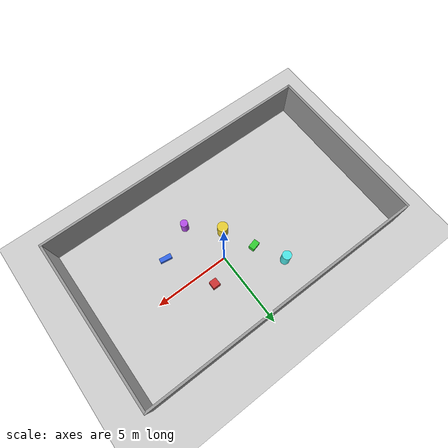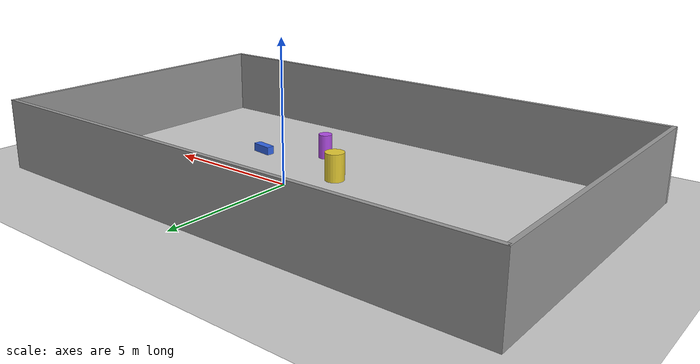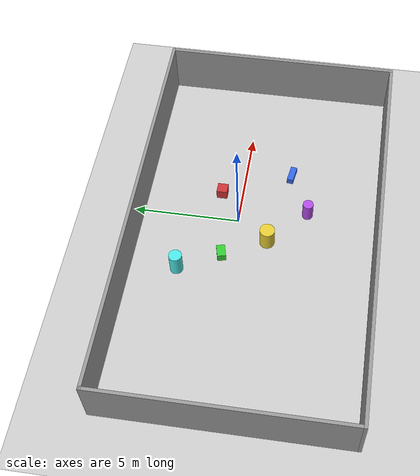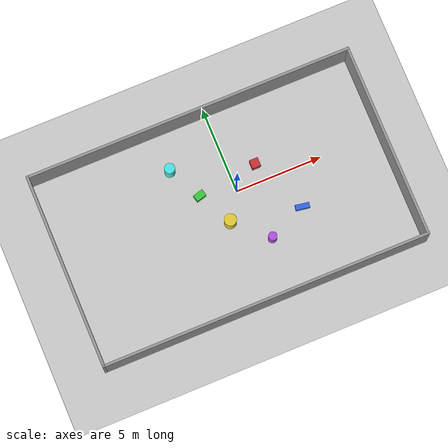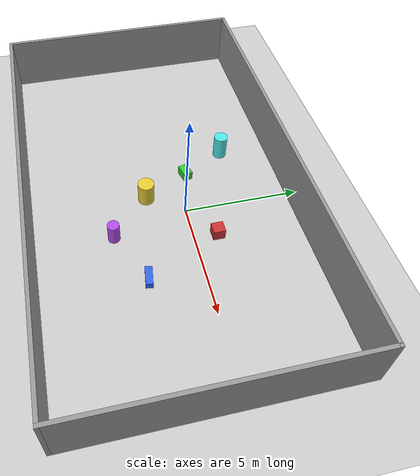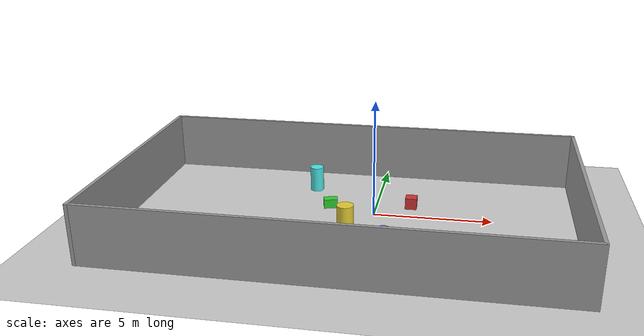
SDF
<?xml version="1.0"?>
<sdf version="1.7">
  <world name="room_world_open">
    <include>
      <uri>model://sun</uri>
    </include>
    <include>
      <uri>model://ground_plane</uri>
    </include>

    <!-- Simple obstacles for SLAM/navigation validation (kept) -->
    <model name="obstacle_box_1">
      <pose>1.5 1.0 0.25 0 0 0</pose>
      <static>true</static>
      <link name="link">
        <collision name="collision">
          <geometry>
            <box>
              <size>0.5 0.5 0.5</size>
            </box>
          </geometry>
        </collision>
        <visual name="visual">
          <geometry>
            <box>
              <size>0.5 0.5 0.5</size>
            </box>
          </geometry>
          <material>
            <ambient>0.8 0.2 0.2 1</ambient>
          </material>
        </visual>
      </link>
    </model>

    <model name="obstacle_box_2">
      <pose>-2.0 0.5 0.20 0 0 0.25</pose>
      <static>true</static>
      <link name="link">
        <collision name="collision">
          <geometry>
            <box>
              <size>0.6 0.4 0.4</size>
            </box>
          </geometry>
        </collision>
        <visual name="visual">
          <geometry>
            <box>
              <size>0.6 0.4 0.4</size>
            </box>
          </geometry>
          <material>
            <ambient>0.2 0.8 0.2 1</ambient>
          </material>
        </visual>
      </link>
    </model>

    <model name="obstacle_box_3">
      <pose>3.0 -2.2 0.15 0 0 -0.15</pose>
      <static>true</static>
      <link name="link">
        <collision name="collision">
          <geometry>
            <box>
              <size>0.8 0.3 0.3</size>
            </box>
          </geometry>
        </collision>
        <visual name="visual">
          <geometry>
            <box>
              <size>0.8 0.3 0.3</size>
            </box>
          </geometry>
          <material>
            <ambient>0.2 0.4 0.9 1</ambient>
          </material>
        </visual>
      </link>
    </model>

    <model name="obstacle_cyl_1">
      <pose>-1.0 -1.5 0.5 0 0 0</pose>
      <static>true</static>
      <link name="link">
        <collision name="collision">
          <geometry>
            <cylinder>
              <radius>0.35</radius>
              <length>1.0</length>
            </cylinder>
          </geometry>
        </collision>
        <visual name="visual">
          <geometry>
            <cylinder>
              <radius>0.35</radius>
              <length>1.0</length>
            </cylinder>
          </geometry>
          <material>
            <ambient>0.9 0.8 0.2 1</ambient>
          </material>
        </visual>
      </link>
    </model>

    <model name="obstacle_cyl_2">
      <pose>0.8 -3.2 0.45 0 0 0</pose>
      <static>true</static>
      <link name="link">
        <collision name="collision">
          <geometry>
            <cylinder>
              <radius>0.25</radius>
              <length>0.9</length>
            </cylinder>
          </geometry>
        </collision>
        <visual name="visual">
          <geometry>
            <cylinder>
              <radius>0.25</radius>
              <length>0.9</length>
            </cylinder>
          </geometry>
          <material>
            <ambient>0.7 0.3 0.9 1</ambient>
          </material>
        </visual>
      </link>
    </model>

    <model name="obstacle_cyl_3">
      <pose>-3.0 2.4 0.55 0 0 0</pose>
      <static>true</static>
      <link name="link">
        <collision name="collision">
          <geometry>
            <cylinder>
              <radius>0.30</radius>
              <length>1.1</length>
            </cylinder>
          </geometry>
        </collision>
        <visual name="visual">
          <geometry>
            <cylinder>
              <radius>0.30</radius>
              <length>1.1</length>
            </cylinder>
          </geometry>
          <material>
            <ambient>0.3 0.9 0.9 1</ambient>
          </material>
        </visual>
      </link>
    </model>

    <!-- Room walls: keep only the outer boundary walls (66-69), remove internal walls -->
    <model name="room">
      <pose>-0.972666 -0.903877 0 0 0 0</pose>

      <link name="Wall_66">
        <collision name="Wall_66_Collision">
          <geometry>
            <box>
              <size>19 0.15 2.5</size>
            </box>
          </geometry>
          <pose>0 0 1.25 0 0 0</pose>
        </collision>
        <visual name="Wall_66_Visual">
          <pose>0 0 1.25 0 0 0</pose>
          <geometry>
            <box>
              <size>19 0.15 2.5</size>
            </box>
          </geometry>
          <material>
            <script>
              <uri>file://media/materials/scripts/gazebo.material</uri>
              <name>Gazebo/Grey</name>
            </script>
            <ambient>1 1 1 1</ambient>
          </material>
          <meta>
            <layer>0</layer>
          </meta>
        </visual>
        <pose>0.013921 5.50955 0 0 0 0</pose>
      </link>

      <link name="Wall_67">
        <collision name="Wall_67_Collision">
          <geometry>
            <box>
              <size>11.25 0.15 2.5</size>
            </box>
          </geometry>
          <pose>0 0 1.25 0 0 0</pose>
        </collision>
        <visual name="Wall_67_Visual">
          <pose>0 0 1.25 0 0 0</pose>
          <geometry>
            <box>
              <size>11.25 0.15 2.5</size>
            </box>
          </geometry>
          <material>
            <script>
              <uri>file://media/materials/scripts/gazebo.material</uri>
              <name>Gazebo/Grey</name>
            </script>
            <ambient>1 1 1 1</ambient>
          </material>
          <meta>
            <layer>0</layer>
          </meta>
        </visual>
        <pose>9.43892 -0.040455 0 0 0 -1.5708</pose>
      </link>

      <link name="Wall_68">
        <collision name="Wall_68_Collision">
          <geometry>
            <box>
              <size>19 0.15 2.5</size>
            </box>
          </geometry>
          <pose>0 0 1.25 0 0 0</pose>
        </collision>
        <visual name="Wall_68_Visual">
          <pose>0 0 1.25 0 0 0</pose>
          <geometry>
            <box>
              <size>19 0.15 2.5</size>
            </box>
          </geometry>
          <material>
            <script>
              <uri>file://media/materials/scripts/gazebo.material</uri>
              <name>Gazebo/Grey</name>
            </script>
            <ambient>1 1 1 1</ambient>
          </material>
          <meta>
            <layer>0</layer>
          </meta>
        </visual>
        <pose>0.013921 -5.59046 0 0 0 3.14159</pose>
      </link>

      <link name="Wall_69">
        <collision name="Wall_69_Collision">
          <geometry>
            <box>
              <size>11.25 0.15 2.5</size>
            </box>
          </geometry>
          <pose>0 0 1.25 0 0 0</pose>
        </collision>
        <visual name="Wall_69_Visual">
          <pose>0 0 1.25 0 0 0</pose>
          <geometry>
            <box>
              <size>11.25 0.15 2.5</size>
            </box>
          </geometry>
          <material>
            <script>
              <uri>file://media/materials/scripts/gazebo.material</uri>
              <name>Gazebo/Grey</name>
            </script>
            <ambient>1 1 1 1</ambient>
          </material>
          <meta>
            <layer>0</layer>
          </meta>
        </visual>
        <pose>-9.41108 -0.040455 0 0 0 1.5708</pose>
      </link>

      <static>true</static>
    </model>
  </world>
</sdf>
